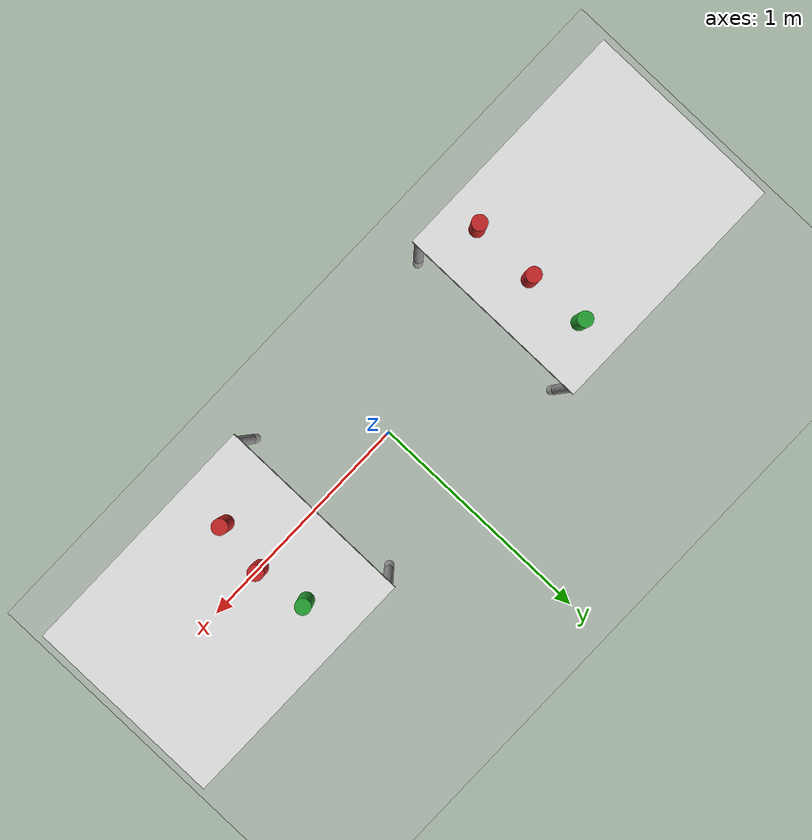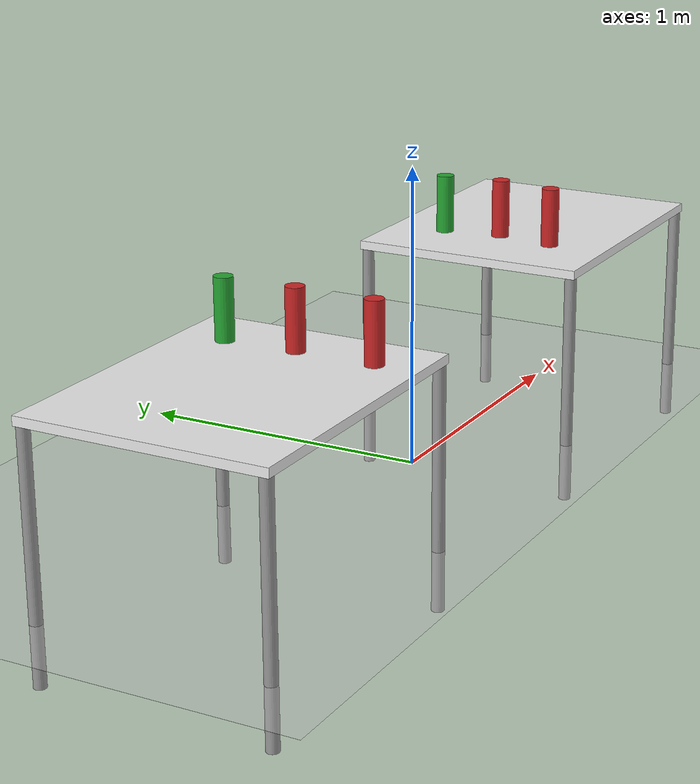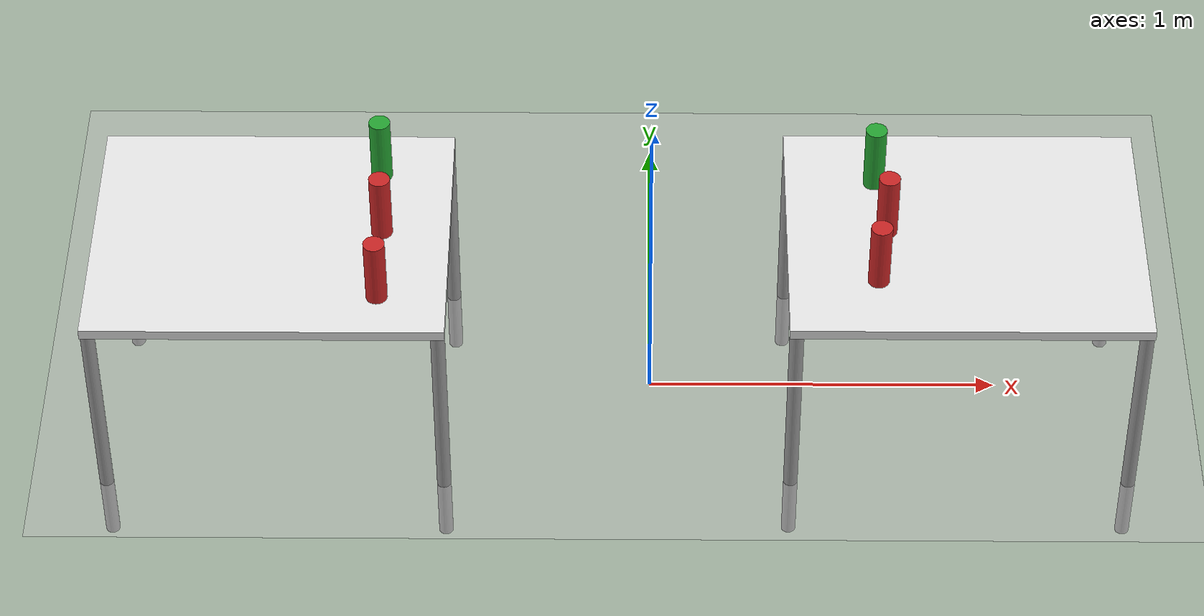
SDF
<sdf version="1.6">
 <world name="default">
  <physics name="default_physics" default="0" type="ode">
   <ode>
    <solver>
     <type>quick</type>
     <iters>20</iters>
     <sor>1</sor>
     <use_dynamic_moi_rescaling>0</use_dynamic_moi_rescaling>
    </solver>
    <constraints>
     <cfm>0</cfm>
     <erp>0.2</erp>
     <contact_max_correcting_vel>100</contact_max_correcting_vel>
     <contact_surface_layer>0</contact_surface_layer>
    </constraints>
   </ode>
   <real_time_update_rate>1000</real_time_update_rate>
   <max_step_size>0.001</max_step_size>
   <real_time_factor>1</real_time_factor>
  </physics>
  <light name="light1" type="directional">
   <pose>-2 0 4 0 -0 0</pose>
   <diffuse>1 1 1 1</diffuse>
   <specular>0.1 0.1 0.1 1</specular>
   <attenuation>
    <range>20</range>
    <constant>0.9</constant>
    <linear>0.01</linear>
    <quadratic>0.001</quadratic>
   </attenuation>
   <direction>0.2 0 -1</direction>
  </light>
  <model name="ground_plane">
   <static>1</static>
   <link name="link">
    <collision name="collision">
     <geometry><plane><normal>0 0 1</normal><size>100 100</size></plane></geometry>
     <surface>
      <contact><collide_bitmask>65535</collide_bitmask></contact>
      <friction><ode><mu>100</mu><mu2>50</mu2></ode></friction>
     </surface>
    </collision>
    <visual name="visual">
     <cast_shadows>0</cast_shadows>
     <geometry><plane><normal>0 0 1</normal><size>100 100</size></plane></geometry>
     <material>
      <script><uri>file://media/materials/scripts/gazebo.material</uri><name>Gazebo/Grey</name></script>
     </material>
    </visual>
   </link>
  </model>
  <gravity>0 0 -9.81</gravity>
  <magnetic_field>6e-06 2.3e-05 -4.2e-05</magnetic_field>
  <atmosphere type="adiabatic"/>
  <scene><ambient>0.4 0.4 0.4 1</ambient><background>0.7 0.7 0.7 1</background><shadows>1</shadows></scene>
  <audio><device>default</device></audio>
  <spherical_coordinates>
   <surface_model>EARTH_WGS84</surface_model>
   <latitude_deg>0</latitude_deg>
   <longitude_deg>0</longitude_deg>
   <elevation>0</elevation>
   <heading_deg>0</heading_deg>
  </spherical_coordinates>
  <model name="table1shortwhite">
   <link name="link">
    <velocity_decay><linear>0</linear><angular>0</angular></velocity_decay>
    <inertial>
     <mass>1</mass>
     <inertia><ixx>1</ixx><ixy>0</ixy><ixz>0</ixz><iyy>1</iyy><iyz>0</iyz><izz>1</izz></inertia>
    </inertial>
    <visual name="front_right_leg">
     <pose>0.48 -0.38 0.2 0 -0 0</pose>
     <geometry><cylinder><radius>0.02</radius><length>0.8</length></cylinder></geometry>
     <material>
      <script><uri>file://media/materials/scripts/gazebo.material</uri><name>Gazebo/Grey</name></script>
      <shader type="vertex"><normal_map>__default__</normal_map></shader>
      <ambient>0.3 0.3 0.3 1</ambient>
      <diffuse>0.7 0.7 0.7 1</diffuse>
      <specular>0.01 0.01 0.01 1</specular>
      <emissive>0 0 0 1</emissive>
     </material>
    </visual>
    <visual name="back_right_leg">
     <pose>-0.48 -0.38 0.2 0 -0 0</pose>
     <geometry><cylinder><radius>0.02</radius><length>0.8</length></cylinder></geometry>
     <material>
      <script><uri>file://media/materials/scripts/gazebo.material</uri><name>Gazebo/Grey</name></script>
      <shader type="vertex"><normal_map>__default__</normal_map></shader>
      <ambient>0.3 0.3 0.3 1</ambient>
      <diffuse>0.7 0.7 0.7 1</diffuse>
      <specular>0.01 0.01 0.01 1</specular>
      <emissive>0 0 0 1</emissive>
     </material>
    </visual>
    <visual name="back_left_leg">
     <pose>-0.48 0.38 0.2 0 -0 0</pose>
     <geometry><cylinder><radius>0.02</radius><length>0.8</length></cylinder></geometry>
     <material>
      <script><uri>file://media/materials/scripts/gazebo.material</uri><name>Gazebo/Grey</name></script>
      <shader type="vertex"><normal_map>__default__</normal_map></shader>
      <ambient>0.3 0.3 0.3 1</ambient>
      <diffuse>0.7 0.7 0.7 1</diffuse>
      <specular>0.01 0.01 0.01 1</specular>
      <emissive>0 0 0 1</emissive>
     </material>
    </visual>
    <visual name="visual1">
     <pose>0 0 0.6 0 -0 0</pose>
     <geometry><box><size>1 0.8 0.03</size></box></geometry>
     <material>
      <script><uri>file://media/materials/scripts/gazebo.material</uri><name>Gazebo/White</name></script>
      <shader type="vertex"><normal_map>__default__</normal_map></shader>
      <ambient>1 1 1 1</ambient>
      <diffuse>1 1 1 1</diffuse>
      <specular>0.2 0.2 0.2 1</specular>
      <emissive>0 0 0 1</emissive>
     </material>
    </visual>
    <visual name="front_left_leg">
     <pose>0.48 0.38 0.2 0 -0 0</pose>
     <geometry><cylinder><radius>0.02</radius><length>0.8</length></cylinder></geometry>
     <material>
      <script><uri>file://media/materials/scripts/gazebo.material</uri><name>Gazebo/Grey</name></script>
      <shader type="vertex"><normal_map>__default__</normal_map></shader>
      <ambient>0.3 0.3 0.3 1</ambient>
      <diffuse>0.7 0.7 0.7 1</diffuse>
      <specular>0.01 0.01 0.01 1</specular>
      <emissive>0 0 0 1</emissive>
     </material>
    </visual>
    <collision name="front_right_leg">
     <pose>0.48 -0.38 0.2 0 -0 0</pose>
     <geometry><cylinder><radius>0.02</radius><length>0.8</length></cylinder></geometry>
     <surface>
      <friction>
       <ode><mu>1</mu><mu2>1</mu2><fdir1>0 0 0</fdir1><slip1>0</slip1><slip2>0</slip2></ode>
       <torsional>
        <coefficient>1</coefficient>
        <patch_radius>0</patch_radius>
        <surface_radius>0</surface_radius>
        <use_patch_radius>1</use_patch_radius>
        <ode><slip>0</slip></ode>
       </torsional>
      </friction>
      <bounce><restitution_coefficient>0</restitution_coefficient><threshold>1e+06</threshold></bounce>
      <contact>
       <collide_without_contact>0</collide_without_contact>
       <collide_without_contact_bitmask>1</collide_without_contact_bitmask>
       <collide_bitmask>1</collide_bitmask>
       <ode>
        <soft_cfm>0</soft_cfm>
        <soft_erp>0.2</soft_erp>
        <kp>1e+13</kp>
        <kd>1</kd>
        <max_vel>0.01</max_vel>
        <min_depth>0</min_depth>
       </ode>
       <bullet>
        <split_impulse>1</split_impulse>
        <split_impulse_penetration_threshold>-0.01</split_impulse_penetration_threshold>
        <soft_cfm>0</soft_cfm>
        <soft_erp>0.2</soft_erp>
        <kp>1e+13</kp>
        <kd>1</kd>
       </bullet>
      </contact>
     </surface>
    </collision>
    <collision name="surface">
     <pose>0 0 0.6 0 -0 0</pose>
     <geometry><box><size>1 0.8 0.03</size></box></geometry>
     <surface>
      <friction>
       <ode><mu>1</mu><mu2>1</mu2><fdir1>0 0 0</fdir1><slip1>0</slip1><slip2>0</slip2></ode>
       <torsional>
        <coefficient>1</coefficient>
        <patch_radius>0</patch_radius>
        <surface_radius>0</surface_radius>
        <use_patch_radius>1</use_patch_radius>
        <ode><slip>0</slip></ode>
       </torsional>
      </friction>
      <bounce><restitution_coefficient>0</restitution_coefficient><threshold>1e+06</threshold></bounce>
      <contact>
       <collide_without_contact>0</collide_without_contact>
       <collide_without_contact_bitmask>1</collide_without_contact_bitmask>
       <collide_bitmask>1</collide_bitmask>
       <ode>
        <soft_cfm>0</soft_cfm>
        <soft_erp>0.2</soft_erp>
        <kp>1e+13</kp>
        <kd>1</kd>
        <max_vel>0.01</max_vel>
        <min_depth>0</min_depth>
       </ode>
       <bullet>
        <split_impulse>1</split_impulse>
        <split_impulse_penetration_threshold>-0.01</split_impulse_penetration_threshold>
        <soft_cfm>0</soft_cfm>
        <soft_erp>0.2</soft_erp>
        <kp>1e+13</kp>
        <kd>1</kd>
       </bullet>
      </contact>
     </surface>
    </collision>
    <collision name="front_left_leg">
     <pose>0.48 0.38 0.2 0 -0 0</pose>
     <geometry><cylinder><radius>0.02</radius><length>0.8</length></cylinder></geometry>
     <surface>
      <friction>
       <ode><mu>1</mu><mu2>1</mu2><fdir1>0 0 0</fdir1><slip1>0</slip1><slip2>0</slip2></ode>
       <torsional>
        <coefficient>1</coefficient>
        <patch_radius>0</patch_radius>
        <surface_radius>0</surface_radius>
        <use_patch_radius>1</use_patch_radius>
        <ode><slip>0</slip></ode>
       </torsional>
      </friction>
      <bounce><restitution_coefficient>0</restitution_coefficient><threshold>1e+06</threshold></bounce>
      <contact>
       <collide_without_contact>0</collide_without_contact>
       <collide_without_contact_bitmask>1</collide_without_contact_bitmask>
       <collide_bitmask>1</collide_bitmask>
       <ode>
        <soft_cfm>0</soft_cfm>
        <soft_erp>0.2</soft_erp>
        <kp>1e+13</kp>
        <kd>1</kd>
        <max_vel>0.01</max_vel>
        <min_depth>0</min_depth>
       </ode>
       <bullet>
        <split_impulse>1</split_impulse>
        <split_impulse_penetration_threshold>-0.01</split_impulse_penetration_threshold>
        <soft_cfm>0</soft_cfm>
        <soft_erp>0.2</soft_erp>
        <kp>1e+13</kp>
        <kd>1</kd>
       </bullet>
      </contact>
     </surface>
    </collision>
    <collision name="back_right_leg">
     <pose>-0.48 -0.38 0.2 0 -0 0</pose>
     <geometry><cylinder><radius>0.02</radius><length>0.8</length></cylinder></geometry>
     <surface>
      <friction>
       <ode><mu>1</mu><mu2>1</mu2><fdir1>0 0 0</fdir1><slip1>0</slip1><slip2>0</slip2></ode>
       <torsional>
        <coefficient>1</coefficient>
        <patch_radius>0</patch_radius>
        <surface_radius>0</surface_radius>
        <use_patch_radius>1</use_patch_radius>
        <ode><slip>0</slip></ode>
       </torsional>
      </friction>
      <bounce><restitution_coefficient>0</restitution_coefficient><threshold>1e+06</threshold></bounce>
      <contact>
       <collide_without_contact>0</collide_without_contact>
       <collide_without_contact_bitmask>1</collide_without_contact_bitmask>
       <collide_bitmask>1</collide_bitmask>
       <ode>
        <soft_cfm>0</soft_cfm>
        <soft_erp>0.2</soft_erp>
        <kp>1e+13</kp>
        <kd>1</kd>
        <max_vel>0.01</max_vel>
        <min_depth>0</min_depth>
       </ode>
       <bullet>
        <split_impulse>1</split_impulse>
        <split_impulse_penetration_threshold>-0.01</split_impulse_penetration_threshold>
        <soft_cfm>0</soft_cfm>
        <soft_erp>0.2</soft_erp>
        <kp>1e+13</kp>
        <kd>1</kd>
       </bullet>
      </contact>
     </surface>
    </collision>
    <collision name="back_left_leg">
     <pose>-0.48 0.38 0.2 0 -0 0</pose>
     <geometry><cylinder><radius>0.02</radius><length>0.8</length></cylinder></geometry>
     <surface>
      <friction>
       <ode><mu>1</mu><mu2>1</mu2><fdir1>0 0 0</fdir1><slip1>0</slip1><slip2>0</slip2></ode>
       <torsional>
        <coefficient>1</coefficient>
        <patch_radius>0</patch_radius>
        <surface_radius>0</surface_radius>
        <use_patch_radius>1</use_patch_radius>
        <ode><slip>0</slip></ode>
       </torsional>
      </friction>
      <bounce><restitution_coefficient>0</restitution_coefficient><threshold>1e+06</threshold></bounce>
      <contact>
       <collide_without_contact>0</collide_without_contact>
       <collide_without_contact_bitmask>1</collide_without_contact_bitmask>
       <collide_bitmask>1</collide_bitmask>
       <ode>
        <soft_cfm>0</soft_cfm>
        <soft_erp>0.2</soft_erp>
        <kp>1e+13</kp>
        <kd>1</kd>
        <max_vel>0.01</max_vel>
        <min_depth>0</min_depth>
       </ode>
       <bullet>
        <split_impulse>1</split_impulse>
        <split_impulse_penetration_threshold>-0.01</split_impulse_penetration_threshold>
        <soft_cfm>0</soft_cfm>
        <soft_erp>0.2</soft_erp>
        <kp>1e+13</kp>
        <kd>1</kd>
       </bullet>
      </contact>
     </surface>
    </collision>
   </link>
   <static>1</static>
   <pose>0.88 0 0 0 -0 0</pose>
  </model>
  <model name="green_cylinder_j">
   <link name="link">
    <inertial>
     <mass>0.3</mass>
     <inertia>
      <ixx>0.0010675</ixx>
      <ixy>0</ixy>
      <ixz>0</ixz>
      <iyy>0.0010675</iyy>
      <iyz>0</iyz>
      <izz>0.000135</izz>
     </inertia>
    </inertial>
    <visual name="visual">
     <geometry><cylinder><radius>0.03</radius><length>0.2</length></cylinder></geometry>
     <material>
      <script><name>Gazebo/Green</name><uri>file://media/materials/scripts/gazebo.material</uri></script>
      <shader type="vertex"><normal_map>__default__</normal_map></shader>
      <ambient>0 1 0 1</ambient>
      <diffuse>0 0.1 0 1</diffuse>
      <specular>0.01 0.1 0.01 1</specular>
      <emissive>0 0.1 0 1</emissive>
     </material>
    </visual>
    <collision name="collision">
     <geometry><cylinder><radius>0.03</radius><length>0.2</length></cylinder></geometry>
     <surface>
      <friction>
       <ode><mu>1</mu><mu2>1</mu2><fdir1>0 0 0</fdir1><slip1>0</slip1><slip2>0</slip2></ode>
       <torsional>
        <coefficient>1</coefficient>
        <patch_radius>0</patch_radius>
        <surface_radius>0</surface_radius>
        <use_patch_radius>1</use_patch_radius>
        <ode><slip>0</slip></ode>
       </torsional>
      </friction>
      <bounce><restitution_coefficient>0</restitution_coefficient><threshold>1e+06</threshold></bounce>
      <contact>
       <collide_without_contact>0</collide_without_contact>
       <collide_without_contact_bitmask>1</collide_without_contact_bitmask>
       <collide_bitmask>1</collide_bitmask>
       <ode>
        <soft_cfm>0</soft_cfm>
        <soft_erp>0.2</soft_erp>
        <kp>1e+13</kp>
        <kd>1</kd>
        <max_vel>0.01</max_vel>
        <min_depth>0</min_depth>
       </ode>
       <bullet>
        <split_impulse>1</split_impulse>
        <split_impulse_penetration_threshold>-0.01</split_impulse_penetration_threshold>
        <soft_cfm>0</soft_cfm>
        <soft_erp>0.2</soft_erp>
        <kp>1e+13</kp>
        <kd>1</kd>
       </bullet>
      </contact>
     </surface>
    </collision>
   </link>
   <static>0</static>
   <pose>0.631763 0.19999 0.714991 -1e-06 -1e-05 -0.002844</pose>
  </model>
  <model name="red_cylinder_j">
   <link name="link">
    <inertial>
     <mass>1</mass>
     <inertia><ixx>0.145833</ixx><ixy>0</ixy><ixz>0</ixz><iyy>0.145833</iyy><iyz>0</iyz><izz>0.125</izz></inertia>
    </inertial>
    <visual name="visual">
     <geometry><cylinder><radius>0.03</radius><length>0.2</length></cylinder></geometry>
     <material>
      <script><name>Gazebo/Red</name><uri>file://media/materials/scripts/gazebo.material</uri></script>
      <shader type="vertex"><normal_map>__default__</normal_map></shader>
      <ambient>1 0 0 1</ambient>
      <diffuse>0 0 0 1</diffuse>
      <specular>0.01 0.01 0.01 1</specular>
      <emissive>0 0 0 1</emissive>
     </material>
    </visual>
    <collision name="collision">
     <geometry><cylinder><radius>0.03</radius><length>0.2</length></cylinder></geometry>
     <surface>
      <friction>
       <ode><mu>1</mu><mu2>1</mu2><fdir1>0 0 0</fdir1><slip1>0</slip1><slip2>0</slip2></ode>
       <torsional>
        <coefficient>1</coefficient>
        <patch_radius>0</patch_radius>
        <surface_radius>0</surface_radius>
        <use_patch_radius>1</use_patch_radius>
        <ode><slip>0</slip></ode>
       </torsional>
      </friction>
      <bounce><restitution_coefficient>0</restitution_coefficient><threshold>1e+06</threshold></bounce>
      <contact>
       <collide_without_contact>0</collide_without_contact>
       <collide_without_contact_bitmask>1</collide_without_contact_bitmask>
       <collide_bitmask>1</collide_bitmask>
       <ode>
        <soft_cfm>0</soft_cfm>
        <soft_erp>0.2</soft_erp>
        <kp>1e+13</kp>
        <kd>1</kd>
        <max_vel>0.01</max_vel>
        <min_depth>0</min_depth>
       </ode>
       <bullet>
        <split_impulse>1</split_impulse>
        <split_impulse_penetration_threshold>-0.01</split_impulse_penetration_threshold>
        <soft_cfm>0</soft_cfm>
        <soft_erp>0.2</soft_erp>
        <kp>1e+13</kp>
        <kd>1</kd>
       </bullet>
      </contact>
     </surface>
    </collision>
   </link>
   <static>0</static>
   <pose>0.66018 -1.1e-05 0.715005 -0.000157 8e-05 -0.004877</pose>
  </model>
  <model name="blue_cylinder_j">
   <link name="link">
    <inertial>
     <mass>0.3</mass>
     <inertia>
      <ixx>0.0010675</ixx>
      <ixy>0</ixy>
      <ixz>0</ixz>
      <iyy>0.0010675</iyy>
      <iyz>0</iyz>
      <izz>0.000135</izz>
     </inertia>
    </inertial>
    <visual name="visual">
     <geometry><cylinder><radius>0.03</radius><length>0.2</length></cylinder></geometry>
     <material>
      <script><name>Gazebo/Red</name><uri>file://media/materials/scripts/gazebo.material</uri></script>
      <shader type="vertex"><normal_map>__default__</normal_map></shader>
      <ambient>0 0 1 1</ambient>
      <diffuse>0 0 0 1</diffuse>
      <specular>0.01 0.01 0.01 1</specular>
      <emissive>0 0 0 1</emissive>
     </material>
    </visual>
    <collision name="collision">
     <geometry><cylinder><radius>0.03</radius><length>0.2</length></cylinder></geometry>
     <surface>
      <friction>
       <ode><mu>1</mu><mu2>1</mu2><fdir1>0 0 0</fdir1><slip1>0</slip1><slip2>0</slip2></ode>
       <torsional>
        <coefficient>1</coefficient>
        <patch_radius>0</patch_radius>
        <surface_radius>0</surface_radius>
        <use_patch_radius>1</use_patch_radius>
        <ode><slip>0</slip></ode>
       </torsional>
      </friction>
      <bounce><restitution_coefficient>0</restitution_coefficient><threshold>1e+06</threshold></bounce>
      <contact>
       <collide_without_contact>0</collide_without_contact>
       <collide_without_contact_bitmask>1</collide_without_contact_bitmask>
       <collide_bitmask>1</collide_bitmask>
       <ode>
        <soft_cfm>0</soft_cfm>
        <soft_erp>0.2</soft_erp>
        <kp>1e+13</kp>
        <kd>1</kd>
        <max_vel>0.01</max_vel>
        <min_depth>0</min_depth>
       </ode>
       <bullet>
        <split_impulse>1</split_impulse>
        <split_impulse_penetration_threshold>-0.01</split_impulse_penetration_threshold>
        <soft_cfm>0</soft_cfm>
        <soft_erp>0.2</soft_erp>
        <kp>1e+13</kp>
        <kd>1</kd>
       </bullet>
      </contact>
     </surface>
    </collision>
   </link>
   <static>0</static>
   <pose>0.630005 -0.200023 0.714996 1.5e-05 0.000195 0.004591</pose>
  </model>
  <model name="table1shortwhite_clone">
   <link name="link">
    <velocity_decay><linear>0</linear><angular>0</angular></velocity_decay>
    <inertial>
     <mass>1</mass>
     <inertia><ixx>1</ixx><ixy>0</ixy><ixz>0</ixz><iyy>1</iyy><iyz>0</iyz><izz>1</izz></inertia>
    </inertial>
    <visual name="front_right_leg">
     <pose>0.48 -0.38 0.2 0 -0 0</pose>
     <geometry><cylinder><radius>0.02</radius><length>0.8</length></cylinder></geometry>
     <material>
      <script><uri>file://media/materials/scripts/gazebo.material</uri><name>Gazebo/Grey</name></script>
      <shader type="vertex"><normal_map>__default__</normal_map></shader>
      <ambient>0.3 0.3 0.3 1</ambient>
      <diffuse>0.7 0.7 0.7 1</diffuse>
      <specular>0.01 0.01 0.01 1</specular>
      <emissive>0 0 0 1</emissive>
     </material>
    </visual>
    <visual name="back_right_leg">
     <pose>-0.48 -0.38 0.2 0 -0 0</pose>
     <geometry><cylinder><radius>0.02</radius><length>0.8</length></cylinder></geometry>
     <material>
      <script><uri>file://media/materials/scripts/gazebo.material</uri><name>Gazebo/Grey</name></script>
      <shader type="vertex"><normal_map>__default__</normal_map></shader>
      <ambient>0.3 0.3 0.3 1</ambient>
      <diffuse>0.7 0.7 0.7 1</diffuse>
      <specular>0.01 0.01 0.01 1</specular>
      <emissive>0 0 0 1</emissive>
     </material>
    </visual>
    <visual name="back_left_leg">
     <pose>-0.48 0.38 0.2 0 -0 0</pose>
     <geometry><cylinder><radius>0.02</radius><length>0.8</length></cylinder></geometry>
     <material>
      <script><uri>file://media/materials/scripts/gazebo.material</uri><name>Gazebo/Grey</name></script>
      <shader type="vertex"><normal_map>__default__</normal_map></shader>
      <ambient>0.3 0.3 0.3 1</ambient>
      <diffuse>0.7 0.7 0.7 1</diffuse>
      <specular>0.01 0.01 0.01 1</specular>
      <emissive>0 0 0 1</emissive>
     </material>
    </visual>
    <visual name="visual1">
     <pose>0 0 0.6 0 -0 0</pose>
     <geometry><box><size>1 0.8 0.03</size></box></geometry>
     <material>
      <script><uri>file://media/materials/scripts/gazebo.material</uri><name>Gazebo/White</name></script>
      <shader type="vertex"><normal_map>__default__</normal_map></shader>
      <ambient>1 1 1 1</ambient>
      <diffuse>1 1 1 1</diffuse>
      <specular>0.2 0.2 0.2 1</specular>
      <emissive>0 0 0 1</emissive>
     </material>
    </visual>
    <visual name="front_left_leg">
     <pose>0.48 0.38 0.2 0 -0 0</pose>
     <geometry><cylinder><radius>0.02</radius><length>0.8</length></cylinder></geometry>
     <material>
      <script><uri>file://media/materials/scripts/gazebo.material</uri><name>Gazebo/Grey</name></script>
      <shader type="vertex"><normal_map>__default__</normal_map></shader>
      <ambient>0.3 0.3 0.3 1</ambient>
      <diffuse>0.7 0.7 0.7 1</diffuse>
      <specular>0.01 0.01 0.01 1</specular>
      <emissive>0 0 0 1</emissive>
     </material>
    </visual>
    <collision name="front_right_leg">
     <pose>0.48 -0.38 0.2 0 -0 0</pose>
     <geometry><cylinder><radius>0.02</radius><length>0.8</length></cylinder></geometry>
     <surface>
      <friction>
       <ode><mu>1</mu><mu2>1</mu2><fdir1>0 0 0</fdir1><slip1>0</slip1><slip2>0</slip2></ode>
       <torsional>
        <coefficient>1</coefficient>
        <patch_radius>0</patch_radius>
        <surface_radius>0</surface_radius>
        <use_patch_radius>1</use_patch_radius>
        <ode><slip>0</slip></ode>
       </torsional>
      </friction>
      <bounce><restitution_coefficient>0</restitution_coefficient><threshold>1e+06</threshold></bounce>
      <contact>
       <collide_without_contact>0</collide_without_contact>
       <collide_without_contact_bitmask>1</collide_without_contact_bitmask>
       <collide_bitmask>1</collide_bitmask>
       <ode>
        <soft_cfm>0</soft_cfm>
        <soft_erp>0.2</soft_erp>
        <kp>1e+13</kp>
        <kd>1</kd>
        <max_vel>0.01</max_vel>
        <min_depth>0</min_depth>
       </ode>
       <bullet>
        <split_impulse>1</split_impulse>
        <split_impulse_penetration_threshold>-0.01</split_impulse_penetration_threshold>
        <soft_cfm>0</soft_cfm>
        <soft_erp>0.2</soft_erp>
        <kp>1e+13</kp>
        <kd>1</kd>
       </bullet>
      </contact>
     </surface>
    </collision>
    <collision name="surface">
     <pose>0 0 0.6 0 -0 0</pose>
     <geometry><box><size>1 0.8 0.03</size></box></geometry>
     <surface>
      <friction>
       <ode><mu>1</mu><mu2>1</mu2><fdir1>0 0 0</fdir1><slip1>0</slip1><slip2>0</slip2></ode>
       <torsional>
        <coefficient>1</coefficient>
        <patch_radius>0</patch_radius>
        <surface_radius>0</surface_radius>
        <use_patch_radius>1</use_patch_radius>
        <ode><slip>0</slip></ode>
       </torsional>
      </friction>
      <bounce><restitution_coefficient>0</restitution_coefficient><threshold>1e+06</threshold></bounce>
      <contact>
       <collide_without_contact>0</collide_without_contact>
       <collide_without_contact_bitmask>1</collide_without_contact_bitmask>
       <collide_bitmask>1</collide_bitmask>
       <ode>
        <soft_cfm>0</soft_cfm>
        <soft_erp>0.2</soft_erp>
        <kp>1e+13</kp>
        <kd>1</kd>
        <max_vel>0.01</max_vel>
        <min_depth>0</min_depth>
       </ode>
       <bullet>
        <split_impulse>1</split_impulse>
        <split_impulse_penetration_threshold>-0.01</split_impulse_penetration_threshold>
        <soft_cfm>0</soft_cfm>
        <soft_erp>0.2</soft_erp>
        <kp>1e+13</kp>
        <kd>1</kd>
       </bullet>
      </contact>
     </surface>
    </collision>
    <collision name="front_left_leg">
     <pose>0.48 0.38 0.2 0 -0 0</pose>
     <geometry><cylinder><radius>0.02</radius><length>0.8</length></cylinder></geometry>
     <surface>
      <friction>
       <ode><mu>1</mu><mu2>1</mu2><fdir1>0 0 0</fdir1><slip1>0</slip1><slip2>0</slip2></ode>
       <torsional>
        <coefficient>1</coefficient>
        <patch_radius>0</patch_radius>
        <surface_radius>0</surface_radius>
        <use_patch_radius>1</use_patch_radius>
        <ode><slip>0</slip></ode>
       </torsional>
      </friction>
      <bounce><restitution_coefficient>0</restitution_coefficient><threshold>1e+06</threshold></bounce>
      <contact>
       <collide_without_contact>0</collide_without_contact>
       <collide_without_contact_bitmask>1</collide_without_contact_bitmask>
       <collide_bitmask>1</collide_bitmask>
       <ode>
        <soft_cfm>0</soft_cfm>
        <soft_erp>0.2</soft_erp>
        <kp>1e+13</kp>
        <kd>1</kd>
        <max_vel>0.01</max_vel>
        <min_depth>0</min_depth>
       </ode>
       <bullet>
        <split_impulse>1</split_impulse>
        <split_impulse_penetration_threshold>-0.01</split_impulse_penetration_threshold>
        <soft_cfm>0</soft_cfm>
        <soft_erp>0.2</soft_erp>
        <kp>1e+13</kp>
        <kd>1</kd>
       </bullet>
      </contact>
     </surface>
    </collision>
    <collision name="back_right_leg">
     <pose>-0.48 -0.38 0.2 0 -0 0</pose>
     <geometry><cylinder><radius>0.02</radius><length>0.8</length></cylinder></geometry>
     <surface>
      <friction>
       <ode><mu>1</mu><mu2>1</mu2><fdir1>0 0 0</fdir1><slip1>0</slip1><slip2>0</slip2></ode>
       <torsional>
        <coefficient>1</coefficient>
        <patch_radius>0</patch_radius>
        <surface_radius>0</surface_radius>
        <use_patch_radius>1</use_patch_radius>
        <ode><slip>0</slip></ode>
       </torsional>
      </friction>
      <bounce><restitution_coefficient>0</restitution_coefficient><threshold>1e+06</threshold></bounce>
      <contact>
       <collide_without_contact>0</collide_without_contact>
       <collide_without_contact_bitmask>1</collide_without_contact_bitmask>
       <collide_bitmask>1</collide_bitmask>
       <ode>
        <soft_cfm>0</soft_cfm>
        <soft_erp>0.2</soft_erp>
        <kp>1e+13</kp>
        <kd>1</kd>
        <max_vel>0.01</max_vel>
        <min_depth>0</min_depth>
       </ode>
       <bullet>
        <split_impulse>1</split_impulse>
        <split_impulse_penetration_threshold>-0.01</split_impulse_penetration_threshold>
        <soft_cfm>0</soft_cfm>
        <soft_erp>0.2</soft_erp>
        <kp>1e+13</kp>
        <kd>1</kd>
       </bullet>
      </contact>
     </surface>
    </collision>
    <collision name="back_left_leg">
     <pose>-0.48 0.38 0.2 0 -0 0</pose>
     <geometry><cylinder><radius>0.02</radius><length>0.8</length></cylinder></geometry>
     <surface>
      <friction>
       <ode><mu>1</mu><mu2>1</mu2><fdir1>0 0 0</fdir1><slip1>0</slip1><slip2>0</slip2></ode>
       <torsional>
        <coefficient>1</coefficient>
        <patch_radius>0</patch_radius>
        <surface_radius>0</surface_radius>
        <use_patch_radius>1</use_patch_radius>
        <ode><slip>0</slip></ode>
       </torsional>
      </friction>
      <bounce><restitution_coefficient>0</restitution_coefficient><threshold>1e+06</threshold></bounce>
      <contact>
       <collide_without_contact>0</collide_without_contact>
       <collide_without_contact_bitmask>1</collide_without_contact_bitmask>
       <collide_bitmask>1</collide_bitmask>
       <ode>
        <soft_cfm>0</soft_cfm>
        <soft_erp>0.2</soft_erp>
        <kp>1e+13</kp>
        <kd>1</kd>
        <max_vel>0.01</max_vel>
        <min_depth>0</min_depth>
       </ode>
       <bullet>
        <split_impulse>1</split_impulse>
        <split_impulse_penetration_threshold>-0.01</split_impulse_penetration_threshold>
        <soft_cfm>0</soft_cfm>
        <soft_erp>0.2</soft_erp>
        <kp>1e+13</kp>
        <kd>1</kd>
       </bullet>
      </contact>
     </surface>
    </collision>
   </link>
   <static>1</static>
   <pose>-1.06438 -0.012992 0 0 -0 0</pose>
  </model>
  <model name="green_cylinder_j_clone">
   <link name="link">
    <inertial>
     <mass>0.3</mass>
     <inertia>
      <ixx>0.0010675</ixx>
      <ixy>0</ixy>
      <ixz>0</ixz>
      <iyy>0.0010675</iyy>
      <iyz>0</iyz>
      <izz>0.000135</izz>
     </inertia>
    </inertial>
    <visual name="visual">
     <geometry><cylinder><radius>0.03</radius><length>0.2</length></cylinder></geometry>
     <material>
      <script><name>Gazebo/Green</name><uri>file://media/materials/scripts/gazebo.material</uri></script>
      <shader type="vertex"><normal_map>__default__</normal_map></shader>
      <ambient>0 1 0 1</ambient>
      <diffuse>0 0.1 0 1</diffuse>
      <specular>0.01 0.1 0.01 1</specular>
      <emissive>0 0.1 0 1</emissive>
     </material>
    </visual>
    <collision name="collision">
     <geometry><cylinder><radius>0.03</radius><length>0.2</length></cylinder></geometry>
     <surface>
      <friction>
       <ode><mu>1</mu><mu2>1</mu2><fdir1>0 0 0</fdir1><slip1>0</slip1><slip2>0</slip2></ode>
       <torsional>
        <coefficient>1</coefficient>
        <patch_radius>0</patch_radius>
        <surface_radius>0</surface_radius>
        <use_patch_radius>1</use_patch_radius>
        <ode><slip>0</slip></ode>
       </torsional>
      </friction>
      <bounce><restitution_coefficient>0</restitution_coefficient><threshold>1e+06</threshold></bounce>
      <contact>
       <collide_without_contact>0</collide_without_contact>
       <collide_without_contact_bitmask>1</collide_without_contact_bitmask>
       <collide_bitmask>1</collide_bitmask>
       <ode>
        <soft_cfm>0</soft_cfm>
        <soft_erp>0.2</soft_erp>
        <kp>1e+13</kp>
        <kd>1</kd>
        <max_vel>0.01</max_vel>
        <min_depth>0</min_depth>
       </ode>
       <bullet>
        <split_impulse>1</split_impulse>
        <split_impulse_penetration_threshold>-0.01</split_impulse_penetration_threshold>
        <soft_cfm>0</soft_cfm>
        <soft_erp>0.2</soft_erp>
        <kp>1e+13</kp>
        <kd>1</kd>
       </bullet>
      </contact>
     </surface>
    </collision>
   </link>
   <static>0</static>
   <pose>-0.765064 0.223663 0.715006 2.3e-05 0.000201 -0.002508</pose>
  </model>
  <model name="red_cylinder_j_clone">
   <link name="link">
    <inertial>
     <mass>1</mass>
     <inertia><ixx>0.145833</ixx><ixy>0</ixy><ixz>0</ixz><iyy>0.145833</iyy><iyz>0</iyz><izz>0.125</izz></inertia>
    </inertial>
    <visual name="visual">
     <geometry><cylinder><radius>0.03</radius><length>0.2</length></cylinder></geometry>
     <material>
      <script><name>Gazebo/Red</name><uri>file://media/materials/scripts/gazebo.material</uri></script>
      <shader type="vertex"><normal_map>__default__</normal_map></shader>
      <ambient>1 0 0 1</ambient>
      <diffuse>0 0 0 1</diffuse>
      <specular>0.01 0.01 0.01 1</specular>
      <emissive>0 0 0 1</emissive>
     </material>
    </visual>
    <collision name="collision">
     <geometry><cylinder><radius>0.03</radius><length>0.2</length></cylinder></geometry>
     <surface>
      <friction>
       <ode><mu>1</mu><mu2>1</mu2><fdir1>0 0 0</fdir1><slip1>0</slip1><slip2>0</slip2></ode>
       <torsional>
        <coefficient>1</coefficient>
        <patch_radius>0</patch_radius>
        <surface_radius>0</surface_radius>
        <use_patch_radius>1</use_patch_radius>
        <ode><slip>0</slip></ode>
       </torsional>
      </friction>
      <bounce><restitution_coefficient>0</restitution_coefficient><threshold>1e+06</threshold></bounce>
      <contact>
       <collide_without_contact>0</collide_without_contact>
       <collide_without_contact_bitmask>1</collide_without_contact_bitmask>
       <collide_bitmask>1</collide_bitmask>
       <ode>
        <soft_cfm>0</soft_cfm>
        <soft_erp>0.2</soft_erp>
        <kp>1e+13</kp>
        <kd>1</kd>
        <max_vel>0.01</max_vel>
        <min_depth>0</min_depth>
       </ode>
       <bullet>
        <split_impulse>1</split_impulse>
        <split_impulse_penetration_threshold>-0.01</split_impulse_penetration_threshold>
        <soft_cfm>0</soft_cfm>
        <soft_erp>0.2</soft_erp>
        <kp>1e+13</kp>
        <kd>1</kd>
       </bullet>
      </contact>
     </surface>
    </collision>
   </link>
   <static>0</static>
   <pose>-0.753696 -0.011942 0.714998 -0.000189 0.000111 -0.004658</pose>
  </model>
  <model name="blue_cylinder_j_clone">
   <link name="link">
    <inertial>
     <mass>0.3</mass>
     <inertia>
      <ixx>0.0010675</ixx>
      <ixy>0</ixy>
      <ixz>0</ixz>
      <iyy>0.0010675</iyy>
      <iyz>0</iyz>
      <izz>0.000135</izz>
     </inertia>
    </inertial>
    <visual name="visual">
     <geometry><cylinder><radius>0.03</radius><length>0.2</length></cylinder></geometry>
     <material>
      <script><name>Gazebo/Red</name><uri>file://media/materials/scripts/gazebo.material</uri></script>
      <shader type="vertex"><normal_map>__default__</normal_map></shader>
      <ambient>0 0 1 1</ambient>
      <diffuse>0 0 0 1</diffuse>
      <specular>0.01 0.01 0.01 1</specular>
      <emissive>0 0 0 1</emissive>
     </material>
    </visual>
    <collision name="collision">
     <geometry><cylinder><radius>0.03</radius><length>0.2</length></cylinder></geometry>
     <surface>
      <friction>
       <ode><mu>1</mu><mu2>1</mu2><fdir1>0 0 0</fdir1><slip1>0</slip1><slip2>0</slip2></ode>
       <torsional>
        <coefficient>1</coefficient>
        <patch_radius>0</patch_radius>
        <surface_radius>0</surface_radius>
        <use_patch_radius>1</use_patch_radius>
        <ode><slip>0</slip></ode>
       </torsional>
      </friction>
      <bounce><restitution_coefficient>0</restitution_coefficient><threshold>1e+06</threshold></bounce>
      <contact>
       <collide_without_contact>0</collide_without_contact>
       <collide_without_contact_bitmask>1</collide_without_contact_bitmask>
       <collide_bitmask>1</collide_bitmask>
       <ode>
        <soft_cfm>0</soft_cfm>
        <soft_erp>0.2</soft_erp>
        <kp>1e+13</kp>
        <kd>1</kd>
        <max_vel>0.01</max_vel>
        <min_depth>0</min_depth>
       </ode>
       <bullet>
        <split_impulse>1</split_impulse>
        <split_impulse_penetration_threshold>-0.01</split_impulse_penetration_threshold>
        <soft_cfm>0</soft_cfm>
        <soft_erp>0.2</soft_erp>
        <kp>1e+13</kp>
        <kd>1</kd>
       </bullet>
      </contact>
     </surface>
    </collision>
   </link>
   <static>0</static>
   <pose>-0.755203 -0.272462 0.715006 2.5e-05 0.000194 0.004237</pose>
  </model>
 </world>
</sdf>
